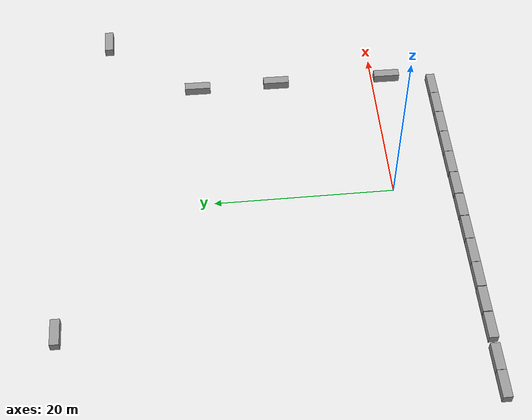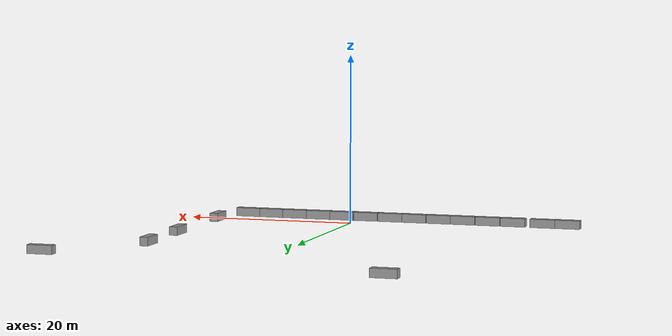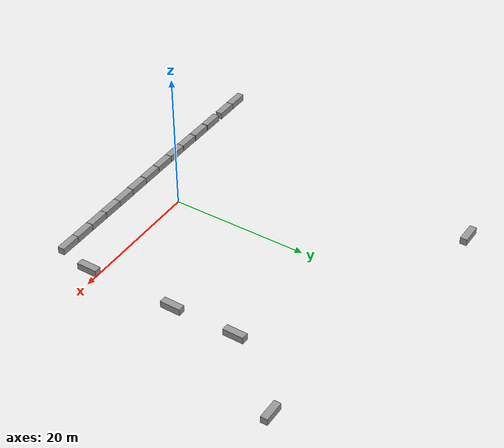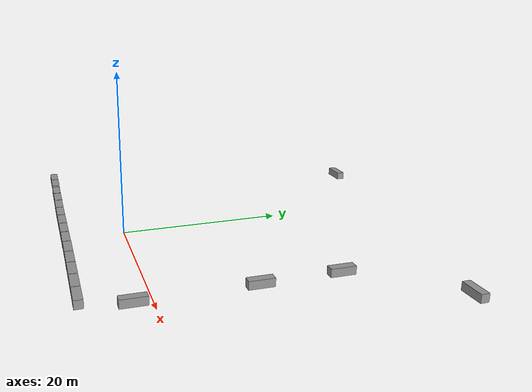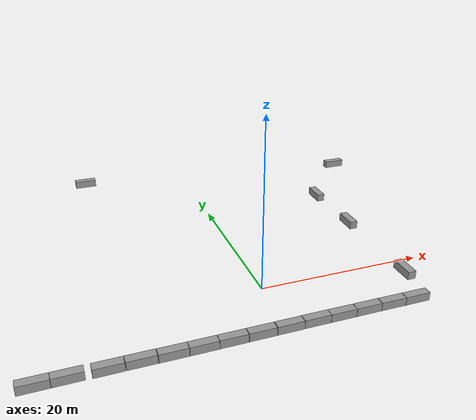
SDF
<?xml version='1.0'?>
<sdf version='1.7'>
  <model name='willow_garage_closed'>
    <link name='link_0'>
      <inertial>
        <mass>3</mass>
        <inertia>
          <ixx>0.5</ixx>
          <ixy>0</ixy>
          <ixz>0</ixz>
          <iyy>0.5</iyy>
          <iyz>0</iyz>
          <izz>0.5</izz>
        </inertia>
        <pose>0 0 0 0 -0 0</pose>
      </inertial>
      <pose>-18.1731 -7.11068 0 0 -0 0</pose>
      <gravity>1</gravity>
      <self_collide>0</self_collide>
      <kinematic>0</kinematic>
      <enable_wind>0</enable_wind>
      <visual name='visual'>
        <pose>0 0 0 0 -0 0</pose>
        <geometry>
          <box>
            <size>3 1 1</size>
          </box>
        </geometry>
        <material>
          <lighting>1</lighting>
          <script>
            <uri>file://media/materials/scripts/gazebo.material</uri>
            <name>Gazebo/Grey</name>
          </script>
          <shader type='pixel'>
            <normal_map>__default__</normal_map>
          </shader>
          <ambient>0.3 0.3 0.3 1</ambient>
          <diffuse>0.7 0.7 0.7 1</diffuse>
          <specular>0.01 0.01 0.01 1</specular>
          <emissive>0 0 0 1</emissive>
        </material>
        <transparency>0</transparency>
        <cast_shadows>1</cast_shadows>
      </visual>
      <collision name='collision'>
        <laser_retro>0</laser_retro>
        <max_contacts>10</max_contacts>
        <pose>0 0 0 0 -0 0</pose>
        <geometry>
          <box>
            <size>3 1 1</size>
          </box>
        </geometry>
        <surface>
          <friction>
            <ode>
              <mu>1</mu>
              <mu2>1</mu2>
              <fdir1>0 0 0</fdir1>
              <slip1>0</slip1>
              <slip2>0</slip2>
            </ode>
            <torsional>
              <coefficient>1</coefficient>
              <patch_radius>0</patch_radius>
              <surface_radius>0</surface_radius>
              <use_patch_radius>1</use_patch_radius>
              <ode>
                <slip>0</slip>
              </ode>
            </torsional>
          </friction>
          <bounce>
            <restitution_coefficient>0</restitution_coefficient>
            <threshold>1e+06</threshold>
          </bounce>
          <contact>
            <collide_without_contact>0</collide_without_contact>
            <collide_without_contact_bitmask>1</collide_without_contact_bitmask>
            <collide_bitmask>1</collide_bitmask>
            <ode>
              <soft_cfm>0</soft_cfm>
              <soft_erp>0.2</soft_erp>
              <kp>1e+13</kp>
              <kd>1</kd>
              <max_vel>0.01</max_vel>
              <min_depth>0</min_depth>
            </ode>
            <bullet>
              <split_impulse>1</split_impulse>
              <split_impulse_penetration_threshold>-0.01</split_impulse_penetration_threshold>
              <soft_cfm>0</soft_cfm>
              <soft_erp>0.2</soft_erp>
              <kp>1e+13</kp>
              <kd>1</kd>
            </bullet>
          </contact>
        </surface>
      </collision>
    </link>
    <link name='link_0_clone_0'>
      <inertial>
        <mass>3</mass>
        <inertia>
          <ixx>0.5</ixx>
          <ixy>0</ixy>
          <ixz>0</ixz>
          <iyy>0.5</iyy>
          <iyz>0</iyz>
          <izz>0.5</izz>
        </inertia>
        <pose>0 0 0 0 -0 0</pose>
      </inertial>
      <pose>-12.0183 -7.13495 0 0 -0 0</pose>
      <gravity>1</gravity>
      <self_collide>0</self_collide>
      <kinematic>0</kinematic>
      <enable_wind>0</enable_wind>
      <visual name='visual'>
        <pose>0 0 0 0 -0 0</pose>
        <geometry>
          <box>
            <size>3 1 1</size>
          </box>
        </geometry>
        <material>
          <lighting>1</lighting>
          <script>
            <uri>file://media/materials/scripts/gazebo.material</uri>
            <name>Gazebo/Grey</name>
          </script>
          <shader type='pixel'>
            <normal_map>__default__</normal_map>
          </shader>
          <ambient>0.3 0.3 0.3 1</ambient>
          <diffuse>0.7 0.7 0.7 1</diffuse>
          <specular>0.01 0.01 0.01 1</specular>
          <emissive>0 0 0 1</emissive>
        </material>
        <transparency>0</transparency>
        <cast_shadows>1</cast_shadows>
      </visual>
      <collision name='collision'>
        <laser_retro>0</laser_retro>
        <max_contacts>10</max_contacts>
        <pose>0 0 0 0 -0 0</pose>
        <geometry>
          <box>
            <size>3 1 1</size>
          </box>
        </geometry>
        <surface>
          <friction>
            <ode>
              <mu>1</mu>
              <mu2>1</mu2>
              <fdir1>0 0 0</fdir1>
              <slip1>0</slip1>
              <slip2>0</slip2>
            </ode>
            <torsional>
              <coefficient>1</coefficient>
              <patch_radius>0</patch_radius>
              <surface_radius>0</surface_radius>
              <use_patch_radius>1</use_patch_radius>
              <ode>
                <slip>0</slip>
              </ode>
            </torsional>
          </friction>
          <bounce>
            <restitution_coefficient>0</restitution_coefficient>
            <threshold>1e+06</threshold>
          </bounce>
          <contact>
            <collide_without_contact>0</collide_without_contact>
            <collide_without_contact_bitmask>1</collide_without_contact_bitmask>
            <collide_bitmask>1</collide_bitmask>
            <ode>
              <soft_cfm>0</soft_cfm>
              <soft_erp>0.2</soft_erp>
              <kp>1e+13</kp>
              <kd>1</kd>
              <max_vel>0.01</max_vel>
              <min_depth>0</min_depth>
            </ode>
            <bullet>
              <split_impulse>1</split_impulse>
              <split_impulse_penetration_threshold>-0.01</split_impulse_penetration_threshold>
              <soft_cfm>0</soft_cfm>
              <soft_erp>0.2</soft_erp>
              <kp>1e+13</kp>
              <kd>1</kd>
            </bullet>
          </contact>
        </surface>
      </collision>
    </link>
    <link name='link_0_clone_1'>
      <inertial>
        <mass>3</mass>
        <inertia>
          <ixx>0.5</ixx>
          <ixy>0</ixy>
          <ixz>0</ixz>
          <iyy>0.5</iyy>
          <iyz>0</iyz>
          <izz>0.5</izz>
        </inertia>
        <pose>0 0 0 0 -0 0</pose>
      </inertial>
      <pose>-8.9893 -7.13725 0 0 -0 0</pose>
      <gravity>1</gravity>
      <self_collide>0</self_collide>
      <kinematic>0</kinematic>
      <enable_wind>0</enable_wind>
      <visual name='visual'>
        <pose>0 0 0 0 -0 0</pose>
        <geometry>
          <box>
            <size>3 1 1</size>
          </box>
        </geometry>
        <material>
          <lighting>1</lighting>
          <script>
            <uri>file://media/materials/scripts/gazebo.material</uri>
            <name>Gazebo/Grey</name>
          </script>
          <shader type='pixel'>
            <normal_map>__default__</normal_map>
          </shader>
          <ambient>0.3 0.3 0.3 1</ambient>
          <diffuse>0.7 0.7 0.7 1</diffuse>
          <specular>0.01 0.01 0.01 1</specular>
          <emissive>0 0 0 1</emissive>
        </material>
        <transparency>0</transparency>
        <cast_shadows>1</cast_shadows>
      </visual>
      <collision name='collision'>
        <laser_retro>0</laser_retro>
        <max_contacts>10</max_contacts>
        <pose>0 0 0 0 -0 0</pose>
        <geometry>
          <box>
            <size>3 1 1</size>
          </box>
        </geometry>
        <surface>
          <friction>
            <ode>
              <mu>1</mu>
              <mu2>1</mu2>
              <fdir1>0 0 0</fdir1>
              <slip1>0</slip1>
              <slip2>0</slip2>
            </ode>
            <torsional>
              <coefficient>1</coefficient>
              <patch_radius>0</patch_radius>
              <surface_radius>0</surface_radius>
              <use_patch_radius>1</use_patch_radius>
              <ode>
                <slip>0</slip>
              </ode>
            </torsional>
          </friction>
          <bounce>
            <restitution_coefficient>0</restitution_coefficient>
            <threshold>1e+06</threshold>
          </bounce>
          <contact>
            <collide_without_contact>0</collide_without_contact>
            <collide_without_contact_bitmask>1</collide_without_contact_bitmask>
            <collide_bitmask>1</collide_bitmask>
            <ode>
              <soft_cfm>0</soft_cfm>
              <soft_erp>0.2</soft_erp>
              <kp>1e+13</kp>
              <kd>1</kd>
              <max_vel>0.01</max_vel>
              <min_depth>0</min_depth>
            </ode>
            <bullet>
              <split_impulse>1</split_impulse>
              <split_impulse_penetration_threshold>-0.01</split_impulse_penetration_threshold>
              <soft_cfm>0</soft_cfm>
              <soft_erp>0.2</soft_erp>
              <kp>1e+13</kp>
              <kd>1</kd>
            </bullet>
          </contact>
        </surface>
      </collision>
    </link>
    <link name='link_0_clone_1_clone'>
      <inertial>
        <mass>3</mass>
        <inertia>
          <ixx>0.5</ixx>
          <ixy>0</ixy>
          <ixz>0</ixz>
          <iyy>0.5</iyy>
          <iyz>0</iyz>
          <izz>0.5</izz>
        </inertia>
        <pose>0 0 0 0 -0 0</pose>
      </inertial>
      <pose>-5.94987 -7.12324 0 0 -0 0</pose>
      <gravity>1</gravity>
      <self_collide>0</self_collide>
      <kinematic>0</kinematic>
      <enable_wind>0</enable_wind>
      <visual name='visual'>
        <pose>0 0 0 0 -0 0</pose>
        <geometry>
          <box>
            <size>3 1 1</size>
          </box>
        </geometry>
        <material>
          <lighting>1</lighting>
          <script>
            <uri>file://media/materials/scripts/gazebo.material</uri>
            <name>Gazebo/Grey</name>
          </script>
          <shader type='pixel'>
            <normal_map>__default__</normal_map>
          </shader>
          <ambient>0.3 0.3 0.3 1</ambient>
          <diffuse>0.7 0.7 0.7 1</diffuse>
          <specular>0.01 0.01 0.01 1</specular>
          <emissive>0 0 0 1</emissive>
        </material>
        <transparency>0</transparency>
        <cast_shadows>1</cast_shadows>
      </visual>
      <collision name='collision'>
        <laser_retro>0</laser_retro>
        <max_contacts>10</max_contacts>
        <pose>0 0 0 0 -0 0</pose>
        <geometry>
          <box>
            <size>3 1 1</size>
          </box>
        </geometry>
        <surface>
          <friction>
            <ode>
              <mu>1</mu>
              <mu2>1</mu2>
              <fdir1>0 0 0</fdir1>
              <slip1>0</slip1>
              <slip2>0</slip2>
            </ode>
            <torsional>
              <coefficient>1</coefficient>
              <patch_radius>0</patch_radius>
              <surface_radius>0</surface_radius>
              <use_patch_radius>1</use_patch_radius>
              <ode>
                <slip>0</slip>
              </ode>
            </torsional>
          </friction>
          <bounce>
            <restitution_coefficient>0</restitution_coefficient>
            <threshold>1e+06</threshold>
          </bounce>
          <contact>
            <collide_without_contact>0</collide_without_contact>
            <collide_without_contact_bitmask>1</collide_without_contact_bitmask>
            <collide_bitmask>1</collide_bitmask>
            <ode>
              <soft_cfm>0</soft_cfm>
              <soft_erp>0.2</soft_erp>
              <kp>1e+13</kp>
              <kd>1</kd>
              <max_vel>0.01</max_vel>
              <min_depth>0</min_depth>
            </ode>
            <bullet>
              <split_impulse>1</split_impulse>
              <split_impulse_penetration_threshold>-0.01</split_impulse_penetration_threshold>
              <soft_cfm>0</soft_cfm>
              <soft_erp>0.2</soft_erp>
              <kp>1e+13</kp>
              <kd>1</kd>
            </bullet>
          </contact>
        </surface>
      </collision>
    </link>
    <link name='link_0_clone_1_clone_0'>
      <inertial>
        <mass>3</mass>
        <inertia>
          <ixx>0.5</ixx>
          <ixy>0</ixy>
          <ixz>0</ixz>
          <iyy>0.5</iyy>
          <iyz>0</iyz>
          <izz>0.5</izz>
        </inertia>
        <pose>0 0 0 0 -0 0</pose>
      </inertial>
      <pose>-15.0884 -7.11052 0 0 -0 0</pose>
      <gravity>1</gravity>
      <self_collide>0</self_collide>
      <kinematic>0</kinematic>
      <enable_wind>0</enable_wind>
      <visual name='visual'>
        <pose>0 0 0 0 -0 0</pose>
        <geometry>
          <box>
            <size>3 1 1</size>
          </box>
        </geometry>
        <material>
          <lighting>1</lighting>
          <script>
            <uri>file://media/materials/scripts/gazebo.material</uri>
            <name>Gazebo/Grey</name>
          </script>
          <shader type='pixel'>
            <normal_map>__default__</normal_map>
          </shader>
          <ambient>0.3 0.3 0.3 1</ambient>
          <diffuse>0.7 0.7 0.7 1</diffuse>
          <specular>0.01 0.01 0.01 1</specular>
          <emissive>0 0 0 1</emissive>
        </material>
        <transparency>0</transparency>
        <cast_shadows>1</cast_shadows>
      </visual>
      <collision name='collision'>
        <laser_retro>0</laser_retro>
        <max_contacts>10</max_contacts>
        <pose>0 0 0 0 -0 0</pose>
        <geometry>
          <box>
            <size>3 1 1</size>
          </box>
        </geometry>
        <surface>
          <friction>
            <ode>
              <mu>1</mu>
              <mu2>1</mu2>
              <fdir1>0 0 0</fdir1>
              <slip1>0</slip1>
              <slip2>0</slip2>
            </ode>
            <torsional>
              <coefficient>1</coefficient>
              <patch_radius>0</patch_radius>
              <surface_radius>0</surface_radius>
              <use_patch_radius>1</use_patch_radius>
              <ode>
                <slip>0</slip>
              </ode>
            </torsional>
          </friction>
          <bounce>
            <restitution_coefficient>0</restitution_coefficient>
            <threshold>1e+06</threshold>
          </bounce>
          <contact>
            <collide_without_contact>0</collide_without_contact>
            <collide_without_contact_bitmask>1</collide_without_contact_bitmask>
            <collide_bitmask>1</collide_bitmask>
            <ode>
              <soft_cfm>0</soft_cfm>
              <soft_erp>0.2</soft_erp>
              <kp>1e+13</kp>
              <kd>1</kd>
              <max_vel>0.01</max_vel>
              <min_depth>0</min_depth>
            </ode>
            <bullet>
              <split_impulse>1</split_impulse>
              <split_impulse_penetration_threshold>-0.01</split_impulse_penetration_threshold>
              <soft_cfm>0</soft_cfm>
              <soft_erp>0.2</soft_erp>
              <kp>1e+13</kp>
              <kd>1</kd>
            </bullet>
          </contact>
        </surface>
      </collision>
    </link>
    <link name='link_0_clone_1_clone_1'>
      <inertial>
        <mass>3</mass>
        <inertia>
          <ixx>0.5</ixx>
          <ixy>0</ixy>
          <ixz>0</ixz>
          <iyy>0.5</iyy>
          <iyz>0</iyz>
          <izz>0.5</izz>
        </inertia>
        <pose>0 0 0 0 -0 0</pose>
      </inertial>
      <pose>-2.90632 -7.10976 0 0 -0 0</pose>
      <gravity>1</gravity>
      <self_collide>0</self_collide>
      <kinematic>0</kinematic>
      <enable_wind>0</enable_wind>
      <visual name='visual'>
        <pose>0 0 0 0 -0 0</pose>
        <geometry>
          <box>
            <size>3 1 1</size>
          </box>
        </geometry>
        <material>
          <lighting>1</lighting>
          <script>
            <uri>file://media/materials/scripts/gazebo.material</uri>
            <name>Gazebo/Grey</name>
          </script>
          <shader type='pixel'>
            <normal_map>__default__</normal_map>
          </shader>
          <ambient>0.3 0.3 0.3 1</ambient>
          <diffuse>0.7 0.7 0.7 1</diffuse>
          <specular>0.01 0.01 0.01 1</specular>
          <emissive>0 0 0 1</emissive>
        </material>
        <transparency>0</transparency>
        <cast_shadows>1</cast_shadows>
      </visual>
      <collision name='collision'>
        <laser_retro>0</laser_retro>
        <max_contacts>10</max_contacts>
        <pose>0 0 0 0 -0 0</pose>
        <geometry>
          <box>
            <size>3 1 1</size>
          </box>
        </geometry>
        <surface>
          <friction>
            <ode>
              <mu>1</mu>
              <mu2>1</mu2>
              <fdir1>0 0 0</fdir1>
              <slip1>0</slip1>
              <slip2>0</slip2>
            </ode>
            <torsional>
              <coefficient>1</coefficient>
              <patch_radius>0</patch_radius>
              <surface_radius>0</surface_radius>
              <use_patch_radius>1</use_patch_radius>
              <ode>
                <slip>0</slip>
              </ode>
            </torsional>
          </friction>
          <bounce>
            <restitution_coefficient>0</restitution_coefficient>
            <threshold>1e+06</threshold>
          </bounce>
          <contact>
            <collide_without_contact>0</collide_without_contact>
            <collide_without_contact_bitmask>1</collide_without_contact_bitmask>
            <collide_bitmask>1</collide_bitmask>
            <ode>
              <soft_cfm>0</soft_cfm>
              <soft_erp>0.2</soft_erp>
              <kp>1e+13</kp>
              <kd>1</kd>
              <max_vel>0.01</max_vel>
              <min_depth>0</min_depth>
            </ode>
            <bullet>
              <split_impulse>1</split_impulse>
              <split_impulse_penetration_threshold>-0.01</split_impulse_penetration_threshold>
              <soft_cfm>0</soft_cfm>
              <soft_erp>0.2</soft_erp>
              <kp>1e+13</kp>
              <kd>1</kd>
            </bullet>
          </contact>
        </surface>
      </collision>
    </link>
    <link name='link_0_clone_1_clone_2'>
      <inertial>
        <mass>3</mass>
        <inertia>
          <ixx>0.5</ixx>
          <ixy>0</ixy>
          <ixz>0</ixz>
          <iyy>0.5</iyy>
          <iyz>0</iyz>
          <izz>0.5</izz>
        </inertia>
        <pose>0 0 0 0 -0 0</pose>
      </inertial>
      <pose>0.157147 -7.09584 0 0 -0 0</pose>
      <gravity>1</gravity>
      <self_collide>0</self_collide>
      <kinematic>0</kinematic>
      <enable_wind>0</enable_wind>
      <visual name='visual'>
        <pose>0 0 0 0 -0 0</pose>
        <geometry>
          <box>
            <size>3 1 1</size>
          </box>
        </geometry>
        <material>
          <lighting>1</lighting>
          <script>
            <uri>file://media/materials/scripts/gazebo.material</uri>
            <name>Gazebo/Grey</name>
          </script>
          <shader type='pixel'>
            <normal_map>__default__</normal_map>
          </shader>
          <ambient>0.3 0.3 0.3 1</ambient>
          <diffuse>0.7 0.7 0.7 1</diffuse>
          <specular>0.01 0.01 0.01 1</specular>
          <emissive>0 0 0 1</emissive>
        </material>
        <transparency>0</transparency>
        <cast_shadows>1</cast_shadows>
      </visual>
      <collision name='collision'>
        <laser_retro>0</laser_retro>
        <max_contacts>10</max_contacts>
        <pose>0 0 0 0 -0 0</pose>
        <geometry>
          <box>
            <size>3 1 1</size>
          </box>
        </geometry>
        <surface>
          <friction>
            <ode>
              <mu>1</mu>
              <mu2>1</mu2>
              <fdir1>0 0 0</fdir1>
              <slip1>0</slip1>
              <slip2>0</slip2>
            </ode>
            <torsional>
              <coefficient>1</coefficient>
              <patch_radius>0</patch_radius>
              <surface_radius>0</surface_radius>
              <use_patch_radius>1</use_patch_radius>
              <ode>
                <slip>0</slip>
              </ode>
            </torsional>
          </friction>
          <bounce>
            <restitution_coefficient>0</restitution_coefficient>
            <threshold>1e+06</threshold>
          </bounce>
          <contact>
            <collide_without_contact>0</collide_without_contact>
            <collide_without_contact_bitmask>1</collide_without_contact_bitmask>
            <collide_bitmask>1</collide_bitmask>
            <ode>
              <soft_cfm>0</soft_cfm>
              <soft_erp>0.2</soft_erp>
              <kp>1e+13</kp>
              <kd>1</kd>
              <max_vel>0.01</max_vel>
              <min_depth>0</min_depth>
            </ode>
            <bullet>
              <split_impulse>1</split_impulse>
              <split_impulse_penetration_threshold>-0.01</split_impulse_penetration_threshold>
              <soft_cfm>0</soft_cfm>
              <soft_erp>0.2</soft_erp>
              <kp>1e+13</kp>
              <kd>1</kd>
            </bullet>
          </contact>
        </surface>
      </collision>
    </link>
    <link name='link_0_clone_1_clone_2_clone'>
      <inertial>
        <mass>3</mass>
        <inertia>
          <ixx>0.5</ixx>
          <ixy>0</ixy>
          <ixz>0</ixz>
          <iyy>0.5</iyy>
          <iyz>0</iyz>
          <izz>0.5</izz>
        </inertia>
        <pose>0 0 0 0 -0 0</pose>
      </inertial>
      <pose>3.19134 -7.07336 0 0 -0 0</pose>
      <gravity>1</gravity>
      <self_collide>0</self_collide>
      <kinematic>0</kinematic>
      <enable_wind>0</enable_wind>
      <visual name='visual'>
        <pose>0 0 0 0 -0 0</pose>
        <geometry>
          <box>
            <size>3 1 1</size>
          </box>
        </geometry>
        <material>
          <lighting>1</lighting>
          <script>
            <uri>file://media/materials/scripts/gazebo.material</uri>
            <name>Gazebo/Grey</name>
          </script>
          <shader type='pixel'>
            <normal_map>__default__</normal_map>
          </shader>
          <ambient>0.3 0.3 0.3 1</ambient>
          <diffuse>0.7 0.7 0.7 1</diffuse>
          <specular>0.01 0.01 0.01 1</specular>
          <emissive>0 0 0 1</emissive>
        </material>
        <transparency>0</transparency>
        <cast_shadows>1</cast_shadows>
      </visual>
      <collision name='collision'>
        <laser_retro>0</laser_retro>
        <max_contacts>10</max_contacts>
        <pose>0 0 0 0 -0 0</pose>
        <geometry>
          <box>
            <size>3 1 1</size>
          </box>
        </geometry>
        <surface>
          <friction>
            <ode>
              <mu>1</mu>
              <mu2>1</mu2>
              <fdir1>0 0 0</fdir1>
              <slip1>0</slip1>
              <slip2>0</slip2>
            </ode>
            <torsional>
              <coefficient>1</coefficient>
              <patch_radius>0</patch_radius>
              <surface_radius>0</surface_radius>
              <use_patch_radius>1</use_patch_radius>
              <ode>
                <slip>0</slip>
              </ode>
            </torsional>
          </friction>
          <bounce>
            <restitution_coefficient>0</restitution_coefficient>
            <threshold>1e+06</threshold>
          </bounce>
          <contact>
            <collide_without_contact>0</collide_without_contact>
            <collide_without_contact_bitmask>1</collide_without_contact_bitmask>
            <collide_bitmask>1</collide_bitmask>
            <ode>
              <soft_cfm>0</soft_cfm>
              <soft_erp>0.2</soft_erp>
              <kp>1e+13</kp>
              <kd>1</kd>
              <max_vel>0.01</max_vel>
              <min_depth>0</min_depth>
            </ode>
            <bullet>
              <split_impulse>1</split_impulse>
              <split_impulse_penetration_threshold>-0.01</split_impulse_penetration_threshold>
              <soft_cfm>0</soft_cfm>
              <soft_erp>0.2</soft_erp>
              <kp>1e+13</kp>
              <kd>1</kd>
            </bullet>
          </contact>
        </surface>
      </collision>
    </link>
    <link name='link_0_clone_1_clone_2_clone_0'>
      <inertial>
        <mass>3</mass>
        <inertia>
          <ixx>0.5</ixx>
          <ixy>0</ixy>
          <ixz>0</ixz>
          <iyy>0.5</iyy>
          <iyz>0</iyz>
          <izz>0.5</izz>
        </inertia>
        <pose>0 0 0 0 -0 0</pose>
      </inertial>
      <pose>6.20885 -7.07647 0 0 -0 0</pose>
      <gravity>1</gravity>
      <self_collide>0</self_collide>
      <kinematic>0</kinematic>
      <enable_wind>0</enable_wind>
      <visual name='visual'>
        <pose>0 0 0 0 -0 0</pose>
        <geometry>
          <box>
            <size>3 1 1</size>
          </box>
        </geometry>
        <material>
          <lighting>1</lighting>
          <script>
            <uri>file://media/materials/scripts/gazebo.material</uri>
            <name>Gazebo/Grey</name>
          </script>
          <shader type='pixel'>
            <normal_map>__default__</normal_map>
          </shader>
          <ambient>0.3 0.3 0.3 1</ambient>
          <diffuse>0.7 0.7 0.7 1</diffuse>
          <specular>0.01 0.01 0.01 1</specular>
          <emissive>0 0 0 1</emissive>
        </material>
        <transparency>0</transparency>
        <cast_shadows>1</cast_shadows>
      </visual>
      <collision name='collision'>
        <laser_retro>0</laser_retro>
        <max_contacts>10</max_contacts>
        <pose>0 0 0 0 -0 0</pose>
        <geometry>
          <box>
            <size>3 1 1</size>
          </box>
        </geometry>
        <surface>
          <friction>
            <ode>
              <mu>1</mu>
              <mu2>1</mu2>
              <fdir1>0 0 0</fdir1>
              <slip1>0</slip1>
              <slip2>0</slip2>
            </ode>
            <torsional>
              <coefficient>1</coefficient>
              <patch_radius>0</patch_radius>
              <surface_radius>0</surface_radius>
              <use_patch_radius>1</use_patch_radius>
              <ode>
                <slip>0</slip>
              </ode>
            </torsional>
          </friction>
          <bounce>
            <restitution_coefficient>0</restitution_coefficient>
            <threshold>1e+06</threshold>
          </bounce>
          <contact>
            <collide_without_contact>0</collide_without_contact>
            <collide_without_contact_bitmask>1</collide_without_contact_bitmask>
            <collide_bitmask>1</collide_bitmask>
            <ode>
              <soft_cfm>0</soft_cfm>
              <soft_erp>0.2</soft_erp>
              <kp>1e+13</kp>
              <kd>1</kd>
              <max_vel>0.01</max_vel>
              <min_depth>0</min_depth>
            </ode>
            <bullet>
              <split_impulse>1</split_impulse>
              <split_impulse_penetration_threshold>-0.01</split_impulse_penetration_threshold>
              <soft_cfm>0</soft_cfm>
              <soft_erp>0.2</soft_erp>
              <kp>1e+13</kp>
              <kd>1</kd>
            </bullet>
          </contact>
        </surface>
      </collision>
    </link>
    <link name='link_0_clone_1_clone_2_clone_1'>
      <inertial>
        <mass>3</mass>
        <inertia>
          <ixx>0.5</ixx>
          <ixy>0</ixy>
          <ixz>0</ixz>
          <iyy>0.5</iyy>
          <iyz>0</iyz>
          <izz>0.5</izz>
        </inertia>
        <pose>0 0 0 0 -0 0</pose>
      </inertial>
      <pose>9.23357 -7.07588 0 0 -0 0</pose>
      <gravity>1</gravity>
      <self_collide>0</self_collide>
      <kinematic>0</kinematic>
      <enable_wind>0</enable_wind>
      <visual name='visual'>
        <pose>0 0 0 0 -0 0</pose>
        <geometry>
          <box>
            <size>3 1 1</size>
          </box>
        </geometry>
        <material>
          <lighting>1</lighting>
          <script>
            <uri>file://media/materials/scripts/gazebo.material</uri>
            <name>Gazebo/Grey</name>
          </script>
          <shader type='pixel'>
            <normal_map>__default__</normal_map>
          </shader>
          <ambient>0.3 0.3 0.3 1</ambient>
          <diffuse>0.7 0.7 0.7 1</diffuse>
          <specular>0.01 0.01 0.01 1</specular>
          <emissive>0 0 0 1</emissive>
        </material>
        <transparency>0</transparency>
        <cast_shadows>1</cast_shadows>
      </visual>
      <collision name='collision'>
        <laser_retro>0</laser_retro>
        <max_contacts>10</max_contacts>
        <pose>0 0 0 0 -0 0</pose>
        <geometry>
          <box>
            <size>3 1 1</size>
          </box>
        </geometry>
        <surface>
          <friction>
            <ode>
              <mu>1</mu>
              <mu2>1</mu2>
              <fdir1>0 0 0</fdir1>
              <slip1>0</slip1>
              <slip2>0</slip2>
            </ode>
            <torsional>
              <coefficient>1</coefficient>
              <patch_radius>0</patch_radius>
              <surface_radius>0</surface_radius>
              <use_patch_radius>1</use_patch_radius>
              <ode>
                <slip>0</slip>
              </ode>
            </torsional>
          </friction>
          <bounce>
            <restitution_coefficient>0</restitution_coefficient>
            <threshold>1e+06</threshold>
          </bounce>
          <contact>
            <collide_without_contact>0</collide_without_contact>
            <collide_without_contact_bitmask>1</collide_without_contact_bitmask>
            <collide_bitmask>1</collide_bitmask>
            <ode>
              <soft_cfm>0</soft_cfm>
              <soft_erp>0.2</soft_erp>
              <kp>1e+13</kp>
              <kd>1</kd>
              <max_vel>0.01</max_vel>
              <min_depth>0</min_depth>
            </ode>
            <bullet>
              <split_impulse>1</split_impulse>
              <split_impulse_penetration_threshold>-0.01</split_impulse_penetration_threshold>
              <soft_cfm>0</soft_cfm>
              <soft_erp>0.2</soft_erp>
              <kp>1e+13</kp>
              <kd>1</kd>
            </bullet>
          </contact>
        </surface>
      </collision>
    </link>
    <link name='link_0_clone_1_clone_2_clone_2'>
      <inertial>
        <mass>3</mass>
        <inertia>
          <ixx>0.5</ixx>
          <ixy>0</ixy>
          <ixz>0</ixz>
          <iyy>0.5</iyy>
          <iyz>0</iyz>
          <izz>0.5</izz>
        </inertia>
        <pose>0 0 0 0 -0 0</pose>
      </inertial>
      <pose>12.2656 -7.08304 0 0 -0 0</pose>
      <gravity>1</gravity>
      <self_collide>0</self_collide>
      <kinematic>0</kinematic>
      <enable_wind>0</enable_wind>
      <visual name='visual'>
        <pose>0 0 0 0 -0 0</pose>
        <geometry>
          <box>
            <size>3 1 1</size>
          </box>
        </geometry>
        <material>
          <lighting>1</lighting>
          <script>
            <uri>file://media/materials/scripts/gazebo.material</uri>
            <name>Gazebo/Grey</name>
          </script>
          <shader type='pixel'>
            <normal_map>__default__</normal_map>
          </shader>
          <ambient>0.3 0.3 0.3 1</ambient>
          <diffuse>0.7 0.7 0.7 1</diffuse>
          <specular>0.01 0.01 0.01 1</specular>
          <emissive>0 0 0 1</emissive>
        </material>
        <transparency>0</transparency>
        <cast_shadows>1</cast_shadows>
      </visual>
      <collision name='collision'>
        <laser_retro>0</laser_retro>
        <max_contacts>10</max_contacts>
        <pose>0 0 0 0 -0 0</pose>
        <geometry>
          <box>
            <size>3 1 1</size>
          </box>
        </geometry>
        <surface>
          <friction>
            <ode>
              <mu>1</mu>
              <mu2>1</mu2>
              <fdir1>0 0 0</fdir1>
              <slip1>0</slip1>
              <slip2>0</slip2>
            </ode>
            <torsional>
              <coefficient>1</coefficient>
              <patch_radius>0</patch_radius>
              <surface_radius>0</surface_radius>
              <use_patch_radius>1</use_patch_radius>
              <ode>
                <slip>0</slip>
              </ode>
            </torsional>
          </friction>
          <bounce>
            <restitution_coefficient>0</restitution_coefficient>
            <threshold>1e+06</threshold>
          </bounce>
          <contact>
            <collide_without_contact>0</collide_without_contact>
            <collide_without_contact_bitmask>1</collide_without_contact_bitmask>
            <collide_bitmask>1</collide_bitmask>
            <ode>
              <soft_cfm>0</soft_cfm>
              <soft_erp>0.2</soft_erp>
              <kp>1e+13</kp>
              <kd>1</kd>
              <max_vel>0.01</max_vel>
              <min_depth>0</min_depth>
            </ode>
            <bullet>
              <split_impulse>1</split_impulse>
              <split_impulse_penetration_threshold>-0.01</split_impulse_penetration_threshold>
              <soft_cfm>0</soft_cfm>
              <soft_erp>0.2</soft_erp>
              <kp>1e+13</kp>
              <kd>1</kd>
            </bullet>
          </contact>
        </surface>
      </collision>
    </link>
    <link name='link_0_clone_1_clone_2_clone_3'>
      <inertial>
        <mass>3</mass>
        <inertia>
          <ixx>0.5</ixx>
          <ixy>0</ixy>
          <ixz>0</ixz>
          <iyy>0.5</iyy>
          <iyz>0</iyz>
          <izz>0.5</izz>
        </inertia>
        <pose>0 0 0 0 -0 0</pose>
      </inertial>
      <pose>15.2837 -7.09055 0 0 -0 0</pose>
      <gravity>1</gravity>
      <self_collide>0</self_collide>
      <kinematic>0</kinematic>
      <enable_wind>0</enable_wind>
      <visual name='visual'>
        <pose>0 0 0 0 -0 0</pose>
        <geometry>
          <box>
            <size>3 1 1</size>
          </box>
        </geometry>
        <material>
          <lighting>1</lighting>
          <script>
            <uri>file://media/materials/scripts/gazebo.material</uri>
            <name>Gazebo/Grey</name>
          </script>
          <shader type='pixel'>
            <normal_map>__default__</normal_map>
          </shader>
          <ambient>0.3 0.3 0.3 1</ambient>
          <diffuse>0.7 0.7 0.7 1</diffuse>
          <specular>0.01 0.01 0.01 1</specular>
          <emissive>0 0 0 1</emissive>
        </material>
        <transparency>0</transparency>
        <cast_shadows>1</cast_shadows>
      </visual>
      <collision name='collision'>
        <laser_retro>0</laser_retro>
        <max_contacts>10</max_contacts>
        <pose>0 0 0 0 -0 0</pose>
        <geometry>
          <box>
            <size>3 1 1</size>
          </box>
        </geometry>
        <surface>
          <friction>
            <ode>
              <mu>1</mu>
              <mu2>1</mu2>
              <fdir1>0 0 0</fdir1>
              <slip1>0</slip1>
              <slip2>0</slip2>
            </ode>
            <torsional>
              <coefficient>1</coefficient>
              <patch_radius>0</patch_radius>
              <surface_radius>0</surface_radius>
              <use_patch_radius>1</use_patch_radius>
              <ode>
                <slip>0</slip>
              </ode>
            </torsional>
          </friction>
          <bounce>
            <restitution_coefficient>0</restitution_coefficient>
            <threshold>1e+06</threshold>
          </bounce>
          <contact>
            <collide_without_contact>0</collide_without_contact>
            <collide_without_contact_bitmask>1</collide_without_contact_bitmask>
            <collide_bitmask>1</collide_bitmask>
            <ode>
              <soft_cfm>0</soft_cfm>
              <soft_erp>0.2</soft_erp>
              <kp>1e+13</kp>
              <kd>1</kd>
              <max_vel>0.01</max_vel>
              <min_depth>0</min_depth>
            </ode>
            <bullet>
              <split_impulse>1</split_impulse>
              <split_impulse_penetration_threshold>-0.01</split_impulse_penetration_threshold>
              <soft_cfm>0</soft_cfm>
              <soft_erp>0.2</soft_erp>
              <kp>1e+13</kp>
              <kd>1</kd>
            </bullet>
          </contact>
        </surface>
      </collision>
    </link>
    <link name='link_0_clone_1_clone_2_clone_4'>
      <inertial>
        <mass>3</mass>
        <inertia>
          <ixx>0.5</ixx>
          <ixy>0</ixy>
          <ixz>0</ixz>
          <iyy>0.5</iyy>
          <iyz>0</iyz>
          <izz>0.5</izz>
        </inertia>
        <pose>0 0 0 0 -0 0</pose>
      </inertial>
      <pose>-21.7947 -7.05737 0 0 -0 0</pose>
      <gravity>1</gravity>
      <self_collide>0</self_collide>
      <kinematic>0</kinematic>
      <enable_wind>0</enable_wind>
      <visual name='visual'>
        <pose>0 0 0 0 -0 0</pose>
        <geometry>
          <box>
            <size>3 1 1</size>
          </box>
        </geometry>
        <material>
          <lighting>1</lighting>
          <script>
            <uri>file://media/materials/scripts/gazebo.material</uri>
            <name>Gazebo/Grey</name>
          </script>
          <shader type='pixel'>
            <normal_map>__default__</normal_map>
          </shader>
          <ambient>0.3 0.3 0.3 1</ambient>
          <diffuse>0.7 0.7 0.7 1</diffuse>
          <specular>0.01 0.01 0.01 1</specular>
          <emissive>0 0 0 1</emissive>
        </material>
        <transparency>0</transparency>
        <cast_shadows>1</cast_shadows>
      </visual>
      <collision name='collision'>
        <laser_retro>0</laser_retro>
        <max_contacts>10</max_contacts>
        <pose>0 0 0 0 -0 0</pose>
        <geometry>
          <box>
            <size>3 1 1</size>
          </box>
        </geometry>
        <surface>
          <friction>
            <ode>
              <mu>1</mu>
              <mu2>1</mu2>
              <fdir1>0 0 0</fdir1>
              <slip1>0</slip1>
              <slip2>0</slip2>
            </ode>
            <torsional>
              <coefficient>1</coefficient>
              <patch_radius>0</patch_radius>
              <surface_radius>0</surface_radius>
              <use_patch_radius>1</use_patch_radius>
              <ode>
                <slip>0</slip>
              </ode>
            </torsional>
          </friction>
          <bounce>
            <restitution_coefficient>0</restitution_coefficient>
            <threshold>1e+06</threshold>
          </bounce>
          <contact>
            <collide_without_contact>0</collide_without_contact>
            <collide_without_contact_bitmask>1</collide_without_contact_bitmask>
            <collide_bitmask>1</collide_bitmask>
            <ode>
              <soft_cfm>0</soft_cfm>
              <soft_erp>0.2</soft_erp>
              <kp>1e+13</kp>
              <kd>1</kd>
              <max_vel>0.01</max_vel>
              <min_depth>0</min_depth>
            </ode>
            <bullet>
              <split_impulse>1</split_impulse>
              <split_impulse_penetration_threshold>-0.01</split_impulse_penetration_threshold>
              <soft_cfm>0</soft_cfm>
              <soft_erp>0.2</soft_erp>
              <kp>1e+13</kp>
              <kd>1</kd>
            </bullet>
          </contact>
        </surface>
      </collision>
    </link>
    <link name='link_0_clone_1_clone_2_clone_5'>
      <inertial>
        <mass>3</mass>
        <inertia>
          <ixx>0.5</ixx>
          <ixy>0</ixy>
          <ixz>0</ixz>
          <iyy>0.5</iyy>
          <iyz>0</iyz>
          <izz>0.5</izz>
        </inertia>
        <pose>0 0 0 0 -0 0</pose>
      </inertial>
      <pose>-24.8227 -7.05873 0 0 -0 0</pose>
      <gravity>1</gravity>
      <self_collide>0</self_collide>
      <kinematic>0</kinematic>
      <enable_wind>0</enable_wind>
      <visual name='visual'>
        <pose>0 0 0 0 -0 0</pose>
        <geometry>
          <box>
            <size>3 1 1</size>
          </box>
        </geometry>
        <material>
          <lighting>1</lighting>
          <script>
            <uri>file://media/materials/scripts/gazebo.material</uri>
            <name>Gazebo/Grey</name>
          </script>
          <shader type='pixel'>
            <normal_map>__default__</normal_map>
          </shader>
          <ambient>0.3 0.3 0.3 1</ambient>
          <diffuse>0.7 0.7 0.7 1</diffuse>
          <specular>0.01 0.01 0.01 1</specular>
          <emissive>0 0 0 1</emissive>
        </material>
        <transparency>0</transparency>
        <cast_shadows>1</cast_shadows>
      </visual>
      <collision name='collision'>
        <laser_retro>0</laser_retro>
        <max_contacts>10</max_contacts>
        <pose>0 0 0 0 -0 0</pose>
        <geometry>
          <box>
            <size>3 1 1</size>
          </box>
        </geometry>
        <surface>
          <friction>
            <ode>
              <mu>1</mu>
              <mu2>1</mu2>
              <fdir1>0 0 0</fdir1>
              <slip1>0</slip1>
              <slip2>0</slip2>
            </ode>
            <torsional>
              <coefficient>1</coefficient>
              <patch_radius>0</patch_radius>
              <surface_radius>0</surface_radius>
              <use_patch_radius>1</use_patch_radius>
              <ode>
                <slip>0</slip>
              </ode>
            </torsional>
          </friction>
          <bounce>
            <restitution_coefficient>0</restitution_coefficient>
            <threshold>1e+06</threshold>
          </bounce>
          <contact>
            <collide_without_contact>0</collide_without_contact>
            <collide_without_contact_bitmask>1</collide_without_contact_bitmask>
            <collide_bitmask>1</collide_bitmask>
            <ode>
              <soft_cfm>0</soft_cfm>
              <soft_erp>0.2</soft_erp>
              <kp>1e+13</kp>
              <kd>1</kd>
              <max_vel>0.01</max_vel>
              <min_depth>0</min_depth>
            </ode>
            <bullet>
              <split_impulse>1</split_impulse>
              <split_impulse_penetration_threshold>-0.01</split_impulse_penetration_threshold>
              <soft_cfm>0</soft_cfm>
              <soft_erp>0.2</soft_erp>
              <kp>1e+13</kp>
              <kd>1</kd>
            </bullet>
          </contact>
        </surface>
      </collision>
    </link>
    <link name='link_0_clone_1_clone_2_clone_6'>
      <inertial>
        <mass>3</mass>
        <inertia>
          <ixx>0.5</ixx>
          <ixy>0</ixy>
          <ixz>0</ixz>
          <iyy>0.5</iyy>
          <iyz>0</iyz>
          <izz>0.5</izz>
        </inertia>
        <pose>0 0 0 0 -0 0</pose>
      </inertial>
      <pose>-14.9964 37.0465 0 0 -0 0</pose>
      <gravity>1</gravity>
      <self_collide>0</self_collide>
      <kinematic>0</kinematic>
      <enable_wind>0</enable_wind>
      <visual name='visual'>
        <pose>0 0 0 0 -0 0</pose>
        <geometry>
          <box>
            <size>3 1 1</size>
          </box>
        </geometry>
        <material>
          <lighting>1</lighting>
          <script>
            <uri>file://media/materials/scripts/gazebo.material</uri>
            <name>Gazebo/Grey</name>
          </script>
          <shader type='pixel'>
            <normal_map>__default__</normal_map>
          </shader>
          <ambient>0.3 0.3 0.3 1</ambient>
          <diffuse>0.7 0.7 0.7 1</diffuse>
          <specular>0.01 0.01 0.01 1</specular>
          <emissive>0 0 0 1</emissive>
        </material>
        <transparency>0</transparency>
        <cast_shadows>1</cast_shadows>
      </visual>
      <collision name='collision'>
        <laser_retro>0</laser_retro>
        <max_contacts>10</max_contacts>
        <pose>0 0 0 0 -0 0</pose>
        <geometry>
          <box>
            <size>3 1 1</size>
          </box>
        </geometry>
        <surface>
          <friction>
            <ode>
              <mu>1</mu>
              <mu2>1</mu2>
              <fdir1>0 0 0</fdir1>
              <slip1>0</slip1>
              <slip2>0</slip2>
            </ode>
            <torsional>
              <coefficient>1</coefficient>
              <patch_radius>0</patch_radius>
              <surface_radius>0</surface_radius>
              <use_patch_radius>1</use_patch_radius>
              <ode>
                <slip>0</slip>
              </ode>
            </torsional>
          </friction>
          <bounce>
            <restitution_coefficient>0</restitution_coefficient>
            <threshold>1e+06</threshold>
          </bounce>
          <contact>
            <collide_without_contact>0</collide_without_contact>
            <collide_without_contact_bitmask>1</collide_without_contact_bitmask>
            <collide_bitmask>1</collide_bitmask>
            <ode>
              <soft_cfm>0</soft_cfm>
              <soft_erp>0.2</soft_erp>
              <kp>1e+13</kp>
              <kd>1</kd>
              <max_vel>0.01</max_vel>
              <min_depth>0</min_depth>
            </ode>
            <bullet>
              <split_impulse>1</split_impulse>
              <split_impulse_penetration_threshold>-0.01</split_impulse_penetration_threshold>
              <soft_cfm>0</soft_cfm>
              <soft_erp>0.2</soft_erp>
              <kp>1e+13</kp>
              <kd>1</kd>
            </bullet>
          </contact>
        </surface>
      </collision>
    </link>
    <link name='link_0_clone_1_clone_2_clone_7'>
      <inertial>
        <mass>3</mass>
        <inertia>
          <ixx>0.5</ixx>
          <ixy>0</ixy>
          <ixz>0</ixz>
          <iyy>0.5</iyy>
          <iyz>0</iyz>
          <izz>0.5</izz>
        </inertia>
        <pose>0 0 0 0 -0 0</pose>
      </inertial>
      <pose>25.93 31.5876 0 0 -0 0</pose>
      <gravity>1</gravity>
      <self_collide>0</self_collide>
      <kinematic>0</kinematic>
      <enable_wind>0</enable_wind>
      <visual name='visual'>
        <pose>0 0 0 0 -0 0</pose>
        <geometry>
          <box>
            <size>3 1 1</size>
          </box>
        </geometry>
        <material>
          <lighting>1</lighting>
          <script>
            <uri>file://media/materials/scripts/gazebo.material</uri>
            <name>Gazebo/Grey</name>
          </script>
          <shader type='pixel'>
            <normal_map>__default__</normal_map>
          </shader>
          <ambient>0.3 0.3 0.3 1</ambient>
          <diffuse>0.7 0.7 0.7 1</diffuse>
          <specular>0.01 0.01 0.01 1</specular>
          <emissive>0 0 0 1</emissive>
        </material>
        <transparency>0</transparency>
        <cast_shadows>1</cast_shadows>
      </visual>
      <collision name='collision'>
        <laser_retro>0</laser_retro>
        <max_contacts>10</max_contacts>
        <pose>0 0 0 0 -0 0</pose>
        <geometry>
          <box>
            <size>3 1 1</size>
          </box>
        </geometry>
        <surface>
          <friction>
            <ode>
              <mu>1</mu>
              <mu2>1</mu2>
              <fdir1>0 0 0</fdir1>
              <slip1>0</slip1>
              <slip2>0</slip2>
            </ode>
            <torsional>
              <coefficient>1</coefficient>
              <patch_radius>0</patch_radius>
              <surface_radius>0</surface_radius>
              <use_patch_radius>1</use_patch_radius>
              <ode>
                <slip>0</slip>
              </ode>
            </torsional>
          </friction>
          <bounce>
            <restitution_coefficient>0</restitution_coefficient>
            <threshold>1e+06</threshold>
          </bounce>
          <contact>
            <collide_without_contact>0</collide_without_contact>
            <collide_without_contact_bitmask>1</collide_without_contact_bitmask>
            <collide_bitmask>1</collide_bitmask>
            <ode>
              <soft_cfm>0</soft_cfm>
              <soft_erp>0.2</soft_erp>
              <kp>1e+13</kp>
              <kd>1</kd>
              <max_vel>0.01</max_vel>
              <min_depth>0</min_depth>
            </ode>
            <bullet>
              <split_impulse>1</split_impulse>
              <split_impulse_penetration_threshold>-0.01</split_impulse_penetration_threshold>
              <soft_cfm>0</soft_cfm>
              <soft_erp>0.2</soft_erp>
              <kp>1e+13</kp>
              <kd>1</kd>
            </bullet>
          </contact>
        </surface>
      </collision>
    </link>
    <link name='link_0_clone_1_clone_2_clone_8'>
      <inertial>
        <mass>3</mass>
        <inertia>
          <ixx>0.5</ixx>
          <ixy>0</ixy>
          <ixz>0</ixz>
          <iyy>0.5</iyy>
          <iyz>0</iyz>
          <izz>0.5</izz>
        </inertia>
        <pose>0 0 0 0 -0 0</pose>
      </inertial>
      <pose>17.4498 21.0078 0 0 -0 1.55875</pose>
      <gravity>1</gravity>
      <self_collide>0</self_collide>
      <kinematic>0</kinematic>
      <enable_wind>0</enable_wind>
      <visual name='visual'>
        <pose>0 0 0 0 -0 0</pose>
        <geometry>
          <box>
            <size>3 1 1</size>
          </box>
        </geometry>
        <material>
          <lighting>1</lighting>
          <script>
            <uri>file://media/materials/scripts/gazebo.material</uri>
            <name>Gazebo/Grey</name>
          </script>
          <shader type='pixel'>
            <normal_map>__default__</normal_map>
          </shader>
          <ambient>0.3 0.3 0.3 1</ambient>
          <diffuse>0.7 0.7 0.7 1</diffuse>
          <specular>0.01 0.01 0.01 1</specular>
          <emissive>0 0 0 1</emissive>
        </material>
        <transparency>0</transparency>
        <cast_shadows>1</cast_shadows>
      </visual>
      <collision name='collision'>
        <laser_retro>0</laser_retro>
        <max_contacts>10</max_contacts>
        <pose>0 0 0 0 -0 0</pose>
        <geometry>
          <box>
            <size>3 1 1</size>
          </box>
        </geometry>
        <surface>
          <friction>
            <ode>
              <mu>1</mu>
              <mu2>1</mu2>
              <fdir1>0 0 0</fdir1>
              <slip1>0</slip1>
              <slip2>0</slip2>
            </ode>
            <torsional>
              <coefficient>1</coefficient>
              <patch_radius>0</patch_radius>
              <surface_radius>0</surface_radius>
              <use_patch_radius>1</use_patch_radius>
              <ode>
                <slip>0</slip>
              </ode>
            </torsional>
          </friction>
          <bounce>
            <restitution_coefficient>0</restitution_coefficient>
            <threshold>1e+06</threshold>
          </bounce>
          <contact>
            <collide_without_contact>0</collide_without_contact>
            <collide_without_contact_bitmask>1</collide_without_contact_bitmask>
            <collide_bitmask>1</collide_bitmask>
            <ode>
              <soft_cfm>0</soft_cfm>
              <soft_erp>0.2</soft_erp>
              <kp>1e+13</kp>
              <kd>1</kd>
              <max_vel>0.01</max_vel>
              <min_depth>0</min_depth>
            </ode>
            <bullet>
              <split_impulse>1</split_impulse>
              <split_impulse_penetration_threshold>-0.01</split_impulse_penetration_threshold>
              <soft_cfm>0</soft_cfm>
              <soft_erp>0.2</soft_erp>
              <kp>1e+13</kp>
              <kd>1</kd>
            </bullet>
          </contact>
        </surface>
      </collision>
    </link>
    <link name='link_0_clone_1_clone_2_clone_8_clone'>
      <inertial>
        <mass>3</mass>
        <inertia>
          <ixx>0.5</ixx>
          <ixy>0</ixy>
          <ixz>0</ixz>
          <iyy>0.5</iyy>
          <iyz>0</iyz>
          <izz>0.5</izz>
        </inertia>
        <pose>0 0 0 0 -0 0</pose>
      </inertial>
      <pose>17.5365 11.551 0 0 -0 1.55875</pose>
      <gravity>1</gravity>
      <self_collide>0</self_collide>
      <kinematic>0</kinematic>
      <enable_wind>0</enable_wind>
      <visual name='visual'>
        <pose>0 0 0 0 -0 0</pose>
        <geometry>
          <box>
            <size>3 1 1</size>
          </box>
        </geometry>
        <material>
          <lighting>1</lighting>
          <script>
            <uri>file://media/materials/scripts/gazebo.material</uri>
            <name>Gazebo/Grey</name>
          </script>
          <shader type='pixel'>
            <normal_map>__default__</normal_map>
          </shader>
          <ambient>0.3 0.3 0.3 1</ambient>
          <diffuse>0.7 0.7 0.7 1</diffuse>
          <specular>0.01 0.01 0.01 1</specular>
          <emissive>0 0 0 1</emissive>
        </material>
        <transparency>0</transparency>
        <cast_shadows>1</cast_shadows>
      </visual>
      <collision name='collision'>
        <laser_retro>0</laser_retro>
        <max_contacts>10</max_contacts>
        <pose>0 0 0 0 -0 0</pose>
        <geometry>
          <box>
            <size>3 1 1</size>
          </box>
        </geometry>
        <surface>
          <friction>
            <ode>
              <mu>1</mu>
              <mu2>1</mu2>
              <fdir1>0 0 0</fdir1>
              <slip1>0</slip1>
              <slip2>0</slip2>
            </ode>
            <torsional>
              <coefficient>1</coefficient>
              <patch_radius>0</patch_radius>
              <surface_radius>0</surface_radius>
              <use_patch_radius>1</use_patch_radius>
              <ode>
                <slip>0</slip>
              </ode>
            </torsional>
          </friction>
          <bounce>
            <restitution_coefficient>0</restitution_coefficient>
            <threshold>1e+06</threshold>
          </bounce>
          <contact>
            <collide_without_contact>0</collide_without_contact>
            <collide_without_contact_bitmask>1</collide_without_contact_bitmask>
            <collide_bitmask>1</collide_bitmask>
            <ode>
              <soft_cfm>0</soft_cfm>
              <soft_erp>0.2</soft_erp>
              <kp>1e+13</kp>
              <kd>1</kd>
              <max_vel>0.01</max_vel>
              <min_depth>0</min_depth>
            </ode>
            <bullet>
              <split_impulse>1</split_impulse>
              <split_impulse_penetration_threshold>-0.01</split_impulse_penetration_threshold>
              <soft_cfm>0</soft_cfm>
              <soft_erp>0.2</soft_erp>
              <kp>1e+13</kp>
              <kd>1</kd>
            </bullet>
          </contact>
        </surface>
      </collision>
    </link>
    <link name='link_0_clone_1_clone_2_clone_8_clone_0'>
      <inertial>
        <mass>3</mass>
        <inertia>
          <ixx>0.5</ixx>
          <ixy>0</ixy>
          <ixz>0</ixz>
          <iyy>0.5</iyy>
          <iyz>0</iyz>
          <izz>0.5</izz>
        </inertia>
        <pose>0 0 0 0 -0 0</pose>
      </inertial>
      <pose>17.4822 -1.85554 0 0 -0 1.55875</pose>
      <gravity>1</gravity>
      <self_collide>0</self_collide>
      <kinematic>0</kinematic>
      <enable_wind>0</enable_wind>
      <visual name='visual'>
        <pose>0 0 0 0 -0 0</pose>
        <geometry>
          <box>
            <size>3 1 1</size>
          </box>
        </geometry>
        <material>
          <lighting>1</lighting>
          <script>
            <uri>file://media/materials/scripts/gazebo.material</uri>
            <name>Gazebo/Grey</name>
          </script>
          <shader type='pixel'>
            <normal_map>__default__</normal_map>
          </shader>
          <ambient>0.3 0.3 0.3 1</ambient>
          <diffuse>0.7 0.7 0.7 1</diffuse>
          <specular>0.01 0.01 0.01 1</specular>
          <emissive>0 0 0 1</emissive>
        </material>
        <transparency>0</transparency>
        <cast_shadows>1</cast_shadows>
      </visual>
      <collision name='collision'>
        <laser_retro>0</laser_retro>
        <max_contacts>10</max_contacts>
        <pose>0 0 0 0 -0 0</pose>
        <geometry>
          <box>
            <size>3 1 1</size>
          </box>
        </geometry>
        <surface>
          <friction>
            <ode>
              <mu>1</mu>
              <mu2>1</mu2>
              <fdir1>0 0 0</fdir1>
              <slip1>0</slip1>
              <slip2>0</slip2>
            </ode>
            <torsional>
              <coefficient>1</coefficient>
              <patch_radius>0</patch_radius>
              <surface_radius>0</surface_radius>
              <use_patch_radius>1</use_patch_radius>
              <ode>
                <slip>0</slip>
              </ode>
            </torsional>
          </friction>
          <bounce>
            <restitution_coefficient>0</restitution_coefficient>
            <threshold>1e+06</threshold>
          </bounce>
          <contact>
            <collide_without_contact>0</collide_without_contact>
            <collide_without_contact_bitmask>1</collide_without_contact_bitmask>
            <collide_bitmask>1</collide_bitmask>
            <ode>
              <soft_cfm>0</soft_cfm>
              <soft_erp>0.2</soft_erp>
              <kp>1e+13</kp>
              <kd>1</kd>
              <max_vel>0.01</max_vel>
              <min_depth>0</min_depth>
            </ode>
            <bullet>
              <split_impulse>1</split_impulse>
              <split_impulse_penetration_threshold>-0.01</split_impulse_penetration_threshold>
              <soft_cfm>0</soft_cfm>
              <soft_erp>0.2</soft_erp>
              <kp>1e+13</kp>
              <kd>1</kd>
            </bullet>
          </contact>
        </surface>
      </collision>
    </link>
    <static>0</static>
    <allow_auto_disable>1</allow_auto_disable>
  </model>
</sdf>
